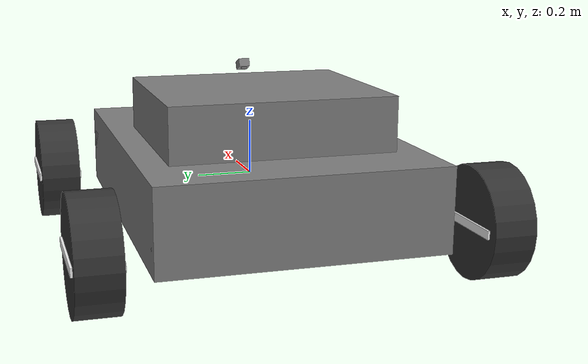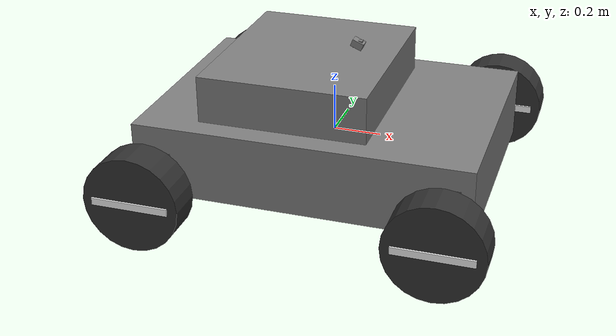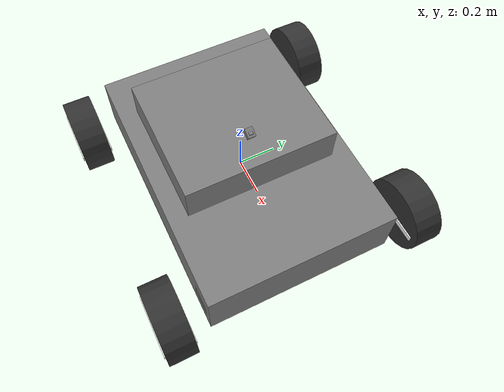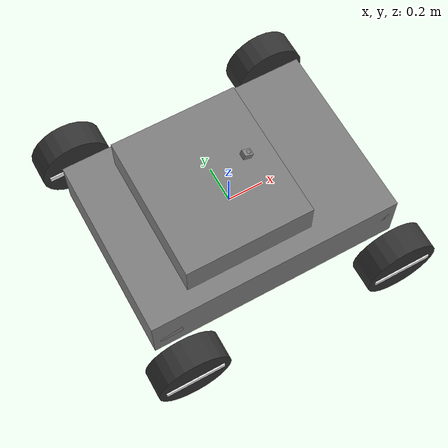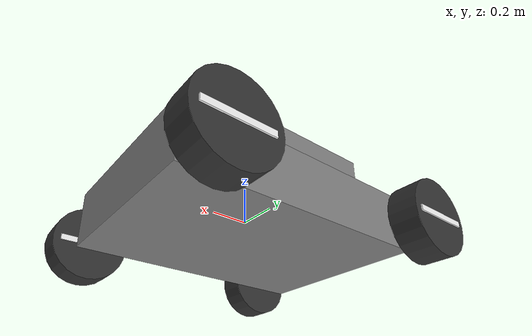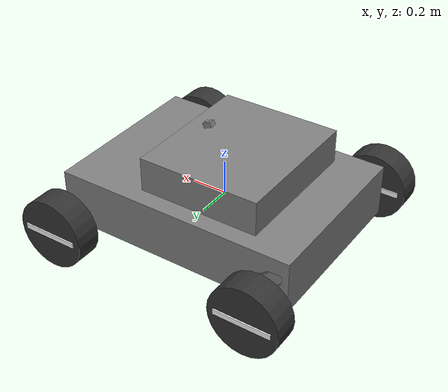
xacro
<?xml version="1.0"?>
<robot name="carbot" xmlns:xacro="http://wiki.ros.org/xacro">

<xacro:property name="car_length" value="1.4"/>
<xacro:property name="car_width" value="1.0"/>
<xacro:property name="car_height" value="0.3"/>
<xacro:property name="wheel_width" value="0.15"/>
<xacro:property name="wheel_radius" value="0.2"/>
<!-- TODO(lwalter) pass these in as args -->
<!-- turning to left -->
<xacro:property name="min_steer" value="-0.7"/>
<!-- turning to right -->
<xacro:property name="max_steer" value="0.7"/>

<xacro:include filename="$(find carbot_description)/urdf/carbot.gazebo"/>

<!-- don't use macro names that are the same as other key names
  like 'box', 'cylinder', etc. otherwise get Invalid parameter "size"
-->
<xacro:macro name="block" params="name length width height mass r:=0.5 b:=0.5 g:=0.5">
  <link name="${name}">
     <visual>
      <origin xyz="0 0 0" rpy="0 0 0"/>
      <geometry>
        <box size="${length} ${width} ${height}"/>
      </geometry>
      <material name="${name}_gray">
        <color rgba="${r} ${g} ${b} 1"/>
      </material>
    </visual>
    <collision>
      <origin xyz="0 0 0" rpy="0 0 0" />
      <geometry>
        <box size="${length} ${width} ${height}"/>
      </geometry>
    </collision>
    <inertial>
      <origin xyz="0 0 0" rpy="0 0 0" />
      <mass value="${mass}"/>
      <inertia
          ixx="${mass / 12.0 * (width * width + height * height)}" ixy="0.0" ixz="0.0"
          iyy="${mass / 12.0 * (length * length + height * height)}" iyz="0.0"
          izz="${mass / 12.0 * (length * length + width * width)}" />
    </inertial>
  </link>
</xacro:macro>

<!-- a wheel that rotates around the y axis, rolls forward toward the x axis -->
<!--origin xyz="${length/2} ${width/2} ${height/2}" /-->
<xacro:macro name="wheel" params="name width radius mass">
  <link name="${name}">
    <visual>
      <origin xyz="0 0 0" rpy="${pi/2} 0 0" />
      <geometry>
        <cylinder length="${width}" radius="${radius}"/>
      </geometry>
      <material name="${name}_black">
        <color rgba="0.2 0.2 0.2 1"/>
      </material>
    </visual>
    <collision>
      <origin xyz="0 0 0" rpy="${pi/2} 0 0" />
      <geometry>
        <cylinder length="${width}" radius="${radius}"/>
      </geometry>
    </collision>
    <inertial>
      <origin xyz="0 0 0" rpy="${pi/2} 0 0" />
      <mass value="${mass}"/>
      <inertia
          ixx="${mass / 12.0 * (3 * radius * radius + width * width)}" ixy="0.0" ixz="0.0"
          iyy="${mass / 12.0 * (3 * radius * radius + width * width)}" iyz="0.0"
          izz="${mass / 2.0 * (radius * radius)}"/>
    </inertial>
  </link>
</xacro:macro>

<xacro:macro name="generic_wheel" params="name parent radius width">

  <xacro:wheel name="wheel_${name}" width="${wheel_width}" radius="${wheel_radius}" mass="0.2"/>
  <joint name="wheel_${name}_axle" type="continuous">
    <parent link="${parent}"/>
    <child link="wheel_${name}"/>
    <origin xyz="0 0 ${-car_height/4}" rpy="0 0 0"/>
    <axis xyz="0 1 0"/>
    <limit effort="100.0" velocity="0.5"/>
  </joint>

  <!-- indicate whether the wheel is spinning -->
  <xacro:block name="wheel_${name}_hubcap" length="${1.6 * wheel_radius}"
      width="${1.1 * wheel_width}" height="${0.2 * wheel_width}" mass="0.1"
      r="0.95" g="0.95" b="0.95"/>
  <joint name="wheel_${name}_hubcap_joint" type="fixed">
    <parent link="wheel_${name}"/>
    <child link="wheel_${name}_hubcap"/>
    <origin xyz="0 0 0" rpy="0 0 0"/>
  </joint>

  <transmission name="${name}_tran">
    <type>transmission_interface/SimpleTransmission</type>
    <joint name="wheel_${name}_axle">
      <hardwareInterface>EffortJointInterface</hardwareInterface>
    </joint>
    <actuator name="${name}_motor">
      <hardwareInterface>EffortJointInterface</hardwareInterface>
      <mechanicalReduction>1</mechanicalReduction>
    </actuator>
  </transmission>

  <gazebo reference="wheel_${name}">
    <mu1>800</mu1>
    <mu2>100</mu2>
    <kp value="10000000.0"/>
    <kd value="1.0"/>
  </gazebo>

</xacro:macro>  <!-- generic wheel -->

<!-- TODO(lucasw) make a wheel xacro to get common code out of
    fixed_wheel and steered_wheel -->
<xacro:macro name="fixed_wheel" params="name parent y">
  <xacro:block name="${name}" length="${car_width/8.0}"
      width="${car_width/8.0}" height="${car_width/8.0}" mass="0.1"/>
  <joint name="${name}_axle" type="fixed">
    <parent link="${parent}"/>
    <child link="${name}"/>
    <origin xyz="0 ${y} 0" rpy="0 0 0"/>
  </joint>

  <xacro:generic_wheel name="${name}" parent="${name}"
      radius="${wheel_radius}" width="${wheel_width}"/>
</xacro:macro>

<xacro:macro name="steered_wheel" params="name parent y">
  <xacro:block name="${name}_steer" length="${car_width/8.0}"
      width="${car_width/8.0}" height="${car_width/8.0}" mass="0.1"/>
  <joint name="${name}_steer_joint" type="revolute">
    <parent link="${parent}"/>
    <child link="${name}_steer"/>
    <origin xyz="0 ${y} 0" rpy="0 0 0"/>
    <axis xyz="0 0 -1"/>
    <limit effort="10.0" upper="${max_steer}" lower="${min_steer}" velocity="0.5"/>
  </joint>

  <transmission name="${name}_steer_tran">
    <type>transmission_interface/SimpleTransmission</type>
    <joint name="${name}_steer_joint">
      <hardwareInterface>EffortJointInterface</hardwareInterface>
    </joint>
    <actuator name="${name}_steer_motor">
      <hardwareInterface>EffortJointInterface</hardwareInterface>
      <mechanicalReduction>1</mechanicalReduction>
    </actuator>
  </transmission>

  <xacro:generic_wheel name="${name}" parent="${name}_steer"
      radius="${wheel_radius}" width="${wheel_width}"/>
</xacro:macro>

  <link name="base_link"/>
  <xacro:block name="chassis_link" length="${car_length}"
      width="${car_width}" height="${car_height}" mass="10.0"/>
  <joint name="chassis_joint" type="fixed">
    <parent link="base_link"/>
    <child link="chassis_link"/>
    <origin xyz="0 0 0" rpy="0 0 0"/>
  </joint>
  <!-- virtual joint that allows visualization of where the
    base_link is steering (given the lead steer joint)
    -->
  <link name="base_steer"/>
  <joint name="base_steer_joint" type="revolute">
    <!--parent link="base_link"/-->
    <parent link="base_link"/>
    <child link="base_steer"/>
    <origin xyz="0 0 0" rpy="0 0 0"/>
    <axis xyz="0 0 -1"/>
    <limit effort="1000.0" upper="${max_steer}" lower="${min_steer}" velocity="0.5"/>
  </joint>

  <xacro:block name="top_link" length="${car_length/2.0}"
      width="${0.8 * car_width}" height="${0.9 * car_height}" mass="0.5"/>
  <joint name="test_joint" type="fixed">
    <parent link="base_link"/>
    <child link="top_link"/>
    <origin xyz="-0.1 0 ${car_height * 0.7}" rpy="0 0 0"/>
  </joint>

  <!-- every link has to have inertia in order for it to work in gazebo
    even if it just connects two inertia links- without it the child link
    that doesn't have inertia won't appear.
    -->
  <xacro:block name="front_axle" length="${car_width/8.0}"
      width="${car_width}" height="${car_width/8.0}" mass="0.1"/>
  <joint name="front_axle_joint" type="fixed">
    <parent link="base_link"/>
    <child link="front_axle"/>
    <origin xyz="${car_length/2 - 0.1} 0 0" rpy="0 0 0"/>
  </joint>

  <link name="lead_steer"/>
  <joint name="lead_steer_joint" type="revolute">
    <!--parent link="base_link"/-->
    <parent link="front_axle"/>
    <child link="lead_steer"/>
    <origin xyz="0 0 0" rpy="0 0 0"/>
    <axis xyz="0 0 -1"/>
    <limit effort="1000.0" upper="${max_steer}" lower="${min_steer}" velocity="0.5"/>
  </joint>
  <!-- virtual wheel that will represent the desired velocity
    of the vehicle (so need radius encoded in it also) -->
  <link name="wheel_lead"/>
  <joint name="wheel_lead_axle" type="continuous">
    <parent link="lead_steer"/>
    <child link="wheel_lead"/>
    <origin xyz="0 0 0" rpy="0 0 0"/>
    <axis xyz="0 1 0"/>
    <limit effort="1000.0" velocity="0.5"/>
  </joint>

  <xacro:steered_wheel name="front_left" parent="front_axle"
      y="${car_width/2 + wheel_width/2 + 0.1}"/>
  <xacro:steered_wheel name="front_right" parent="front_axle"
      y="${-car_width/2 - wheel_width/2 - 0.1}"/>

  <xacro:block name="back_axle" length="${car_width/8.0}"
      width="${car_width}" height="${car_width/8.0}" mass="0.1"/>
  <joint name="back_axle_joint" type="fixed">
    <parent link="base_link"/>
    <child link="back_axle"/>
    <origin xyz="${-car_length/2 + 0.1} 0 0" rpy="0 0 0"/>
  </joint>

  <xacro:fixed_wheel name="back_left" parent="back_axle"
      y="${car_width/2 + wheel_width/2 + 0.1}"/>
  <xacro:fixed_wheel name="back_right" parent="back_axle"
      y="${-1 * (car_width/2 + wheel_width/2 + 0.1)}"/>

  <!-- sensors -->
  <xacro:block name="camera_mast" length="0.04"
      width="0.02" height="0.03" mass="0.1"/>
  <joint name="camera_mast_joint" type="prismatic">
    <parent link="base_link"/>
    <child link="camera_mast"/>
    <origin xyz="0.1 0 0.4" rpy="0 0 0"/>
    <axis xyz="0 0 1"/>
    <limit effort="20.0" velocity="0.25" lower="0.0" upper="0.5"/>
  </joint>

  <xacro:block name="camera_link" length="0.05"
      width="0.04" height="0.03" mass="0.1"/>
  <joint name="camera_joint" type="fixed">
    <parent link="camera_mast"/>
    <child link="camera_link"/>
    <origin xyz="0.0 0 0.0" rpy="0 0.4 0"/>
  </joint>

  <link name="camera_link_optical"/>
  <!-- generate an optical frame http://www.ros.org/reps/rep-0103.html#suffix-frames
      so that ros and opencv can operate on the camera frame correctly -->
  <joint name="camera_optical_joint" type="fixed">
    <!-- these values have to be these values otherwise the gazebo camera image
        won't be aligned properly with the frame it is supposedly originating from -->
    <origin xyz="0 0 0" rpy="${-pi/2} 0 ${-pi/2}"/>
    <parent link="camera_link"/>
    <child link="camera_link_optical"/>
  </joint>

</robot>
